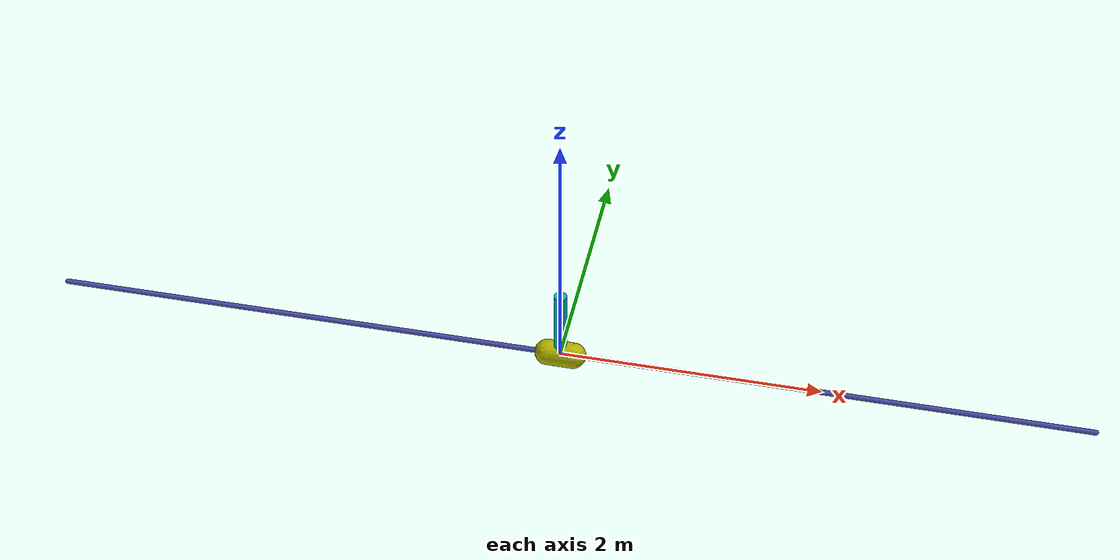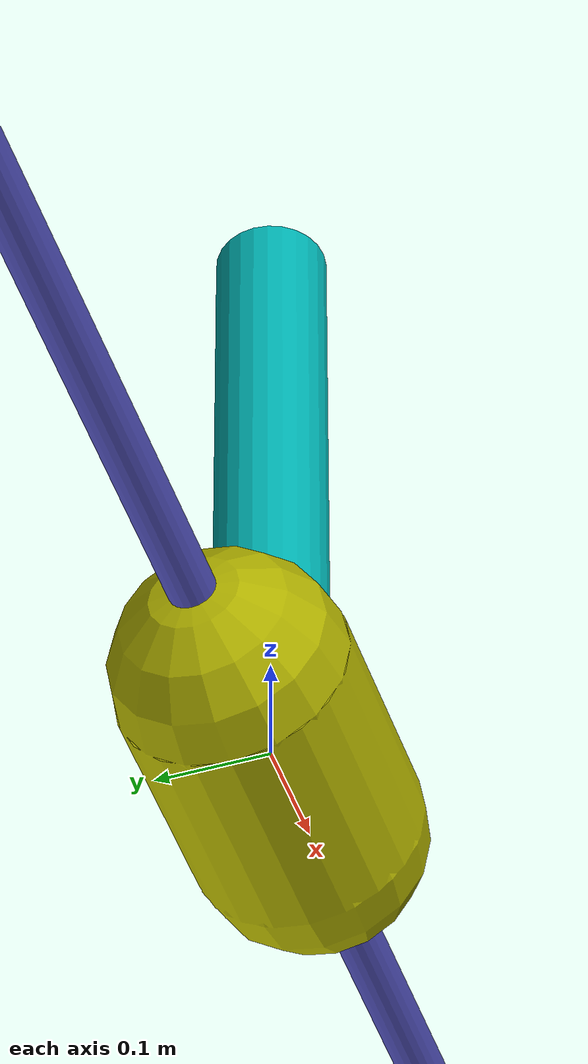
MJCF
<mujoco model="inverted pendulum">
	<compiler inertiafromgeom="true"/>
	<default>
		<joint armature="0" damping="1" limited="true"/>
		<geom contype="0" friction="1 0.1 0.1" rgba="0.7 0.7 0 1"/>
		<tendon/>
		<motor ctrlrange="-3 3"/>
	</default>
	<option gravity="0 0 -9.81" integrator="Euler" timestep="0.02"/>
	<size nstack="3000"/>
	<worldbody>
		<!--geom name="ground" type="plane" pos="0 0 0" /-->
		<geom name="rail" pos="0 0 0" quat="0.707 0 0.707 0" rgba="0.3 0.3 0.7 1" size="0.02 4" type="capsule"/>
		<body name="cart" pos="0 0 0">
			<joint axis="1 0 0" limited="true" name="slider" pos="0 0 0" range="-4 4" type="slide" damping="0"/>
			<geom name="cart" pos="0 0 0" quat="0.707 0 0.707 0" size="0.1 0.1" type="capsule" mass="10"/>
			<body name="pole" pos="0 0 0">
				<joint axis="0 1 0" name="hinge" pos="0 0 0" range="-1000 1000" type="hinge" damping="0"/>
				<geom fromto="0 0 0 0.001 0 0.6" name="cpole" rgba="0 0.7 0.7 1" size="0.049 0.3" type="cylinder" mass="0.0000000001"/>
				<geom name="pointmass" pos='0 0 0.6' type="sphere" size=".0000002" rgba = "1 1 1 1" mass="5"/>
				<!--site name='EndEffector' pos='0 0 0.6' size='0.001' rgba='1 1 1 1'/-->
			</body>
		</body>
	</worldbody>
	<actuator>
		<motor joint="slider" name="slide"/>
	</actuator>

</mujoco>
